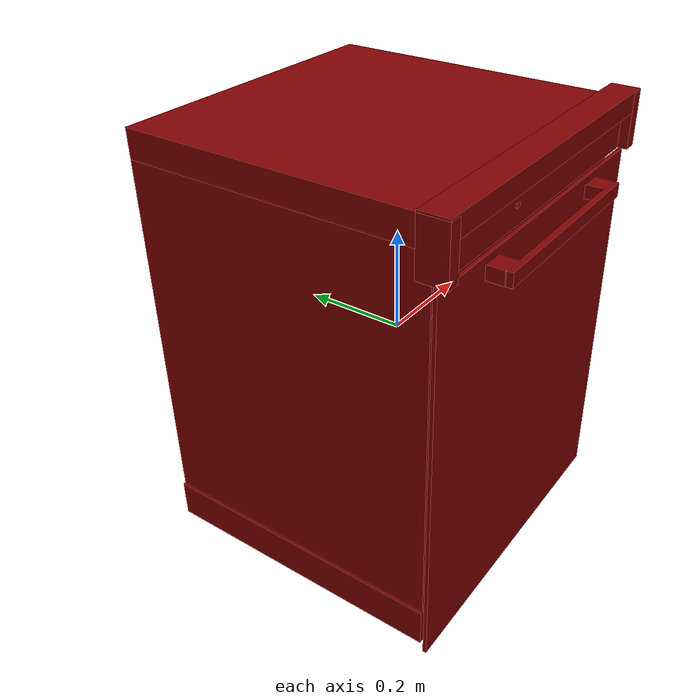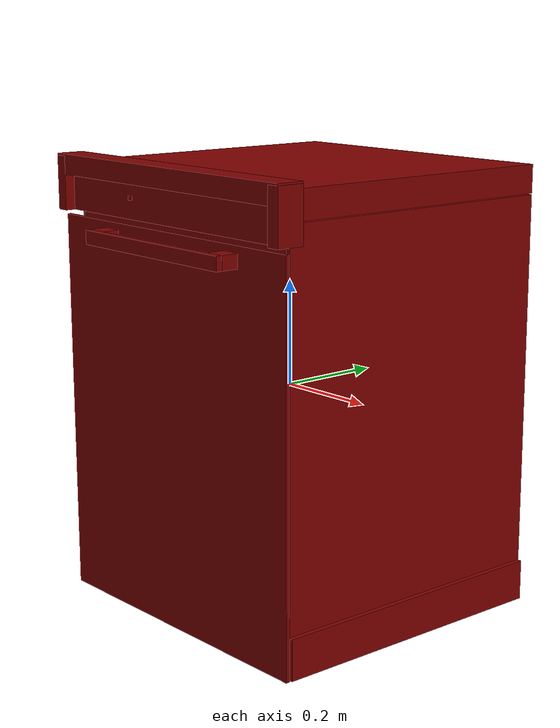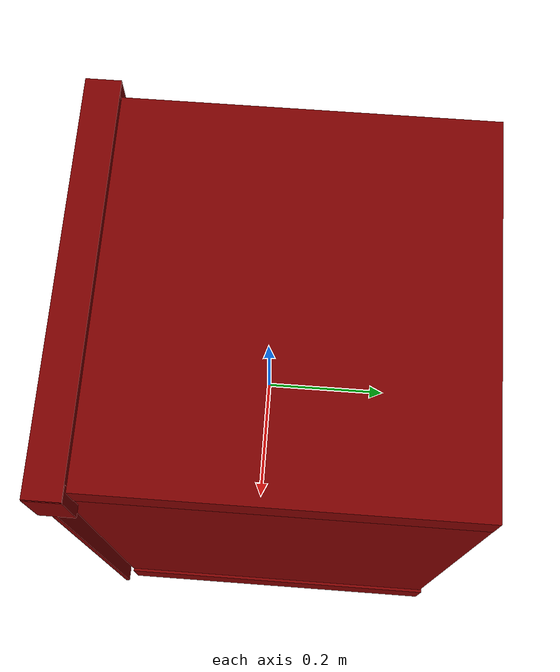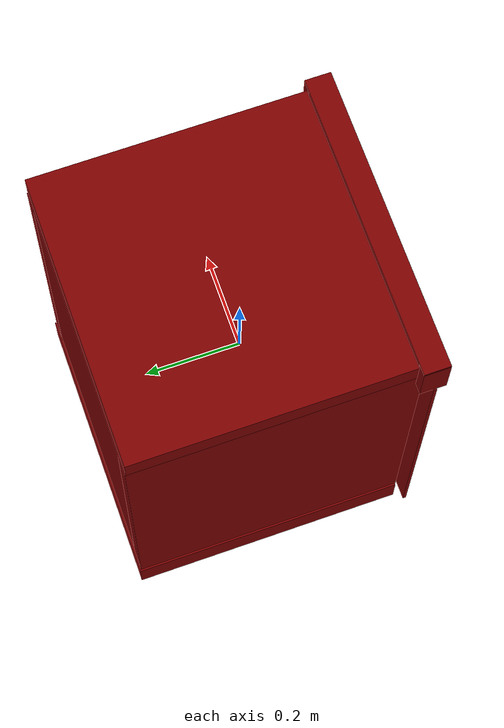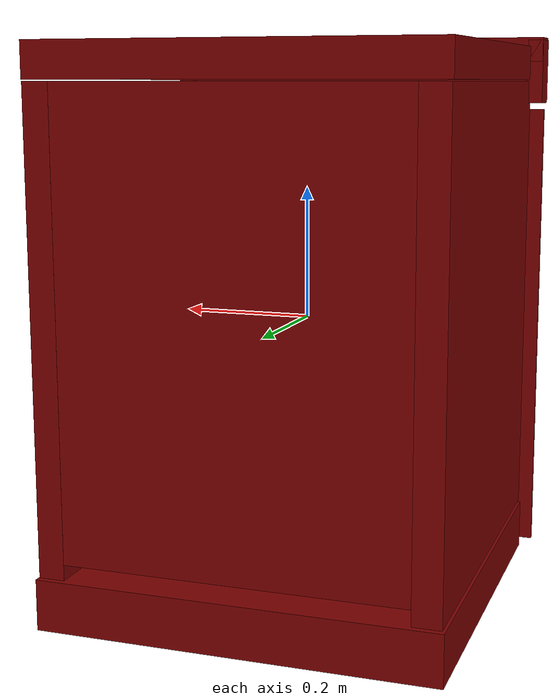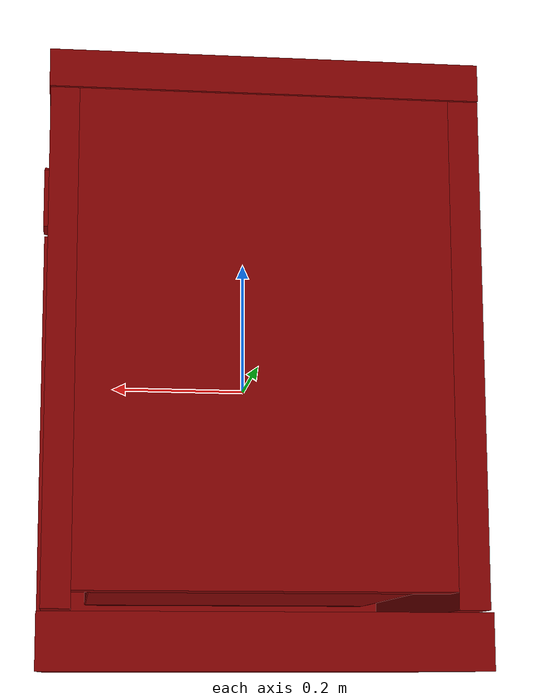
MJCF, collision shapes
<mujoco model="model">
  <compiler angle="radian"/>
  <asset>
    <mesh file="visuals/Body001.obj" name="Body001_vis"/>
    <mesh file="visuals/Button001.obj" name="Button001_vis"/>
    <mesh file="visuals/Container001.obj" name="Container001_vis"/>
    <mesh file="visuals/Container002.obj" name="Container002_vis"/>
    <mesh file="visuals/Door001.obj" name="Door001_vis"/>
    <texture file="visuals/T_BC001.png" name="Body001_material" type="2d"/>
    <material name="Body001_material" rgba="1 1 1 1.0" texture="Body001_material" shininess="0.5" specular="0.3103448502657381"/>
    <texture file="visuals/T_BC001.png" name="Button001_material" type="2d"/>
    <material name="Button001_material" rgba="1 1 1 1.0" texture="Button001_material" shininess="0.5" specular="0.3103448502657381"/>
    <texture file="visuals/T_BC001.png" name="Container001_material" type="2d"/>
    <material name="Container001_material" rgba="1 1 1 1.0" texture="Container001_material" shininess="3.5" specular="0.5"/>
    <texture file="visuals/T_BC001.png" name="Container002_material" type="2d"/>
    <material name="Container002_material" rgba="1 1 1 1.0" texture="Container002_material" shininess="3.5" specular="0.5"/>
    <texture file="visuals/T_BC001.png" name="Door001_material" type="2d"/>
    <material name="Door001_material" rgba="1 1 1 1.0" texture="Door001_material" shininess="2.5" specular="0.8"/>
  </asset>
  <default>
    <default class="visual">
      <geom conaffinity="0" contype="0" group="1" type="mesh"/>
    </default>
    <default class="collision">
      <geom group="0" rgba="0.5 0 0 0.5"/>
    </default>
    <default class="spawn">
      <geom group="0" rgba="1 1 1 0.5" contype="0" conaffinity="0"/>
      <site group="0" rgba="1 1 1 0.5"/>
    </default>
    <default class="region">
      <geom group="1" conaffinity="0" contype="0" rgba="0 1 0 0"/>
    </default>
  </default>
  <worldbody>
    <body>
      <body name="object">
        <geom mesh="Body001_vis" type="mesh" solimp="0.998 0.998 0.001" solref="0.001 1" density="100" friction="0.95 0.3 0.1" class="visual" material="Body001_material"/>
        <geom class="collision" type="box" pos="-0.274838 0.034994 0.007088" size="0.021320758387446404 0.2906593084335327 0.3533220589160919" quat="1.0 0.0 0.0 0.0"/>
        <geom class="collision" type="box" pos="0.278451 0.034994 0.007088" size="0.019756343215703964 0.29065802693367004 0.3533201217651367" quat="1.0 0.0 0.0 0.0"/>
        <geom class="collision" type="box" pos="0.003362 0.299073 0.018904" size="0.2898982763290405 0.026513153687119484 0.34150198101997375" quat="1.0 0.0 0.0 0.0"/>
        <geom class="collision" type="box" pos="0.001229 0.041261 0.389369" size="0.29874828457832336 0.2825988829135895 0.02651568129658699" quat="1.0 0.0 0.0 0.0"/>
        <geom class="collision" type="box" pos="0.001955 0.036900 -0.387555" size="0.3012716770172119 0.2916053533554077 0.038419533520936966" quat="1.0 0.0 0.0 0.0"/>
        <geom class="collision" type="box" pos="0.303973 -0.268572 0.375862" size="0.012740720994770527 0.026818690821528435 0.05019058287143707" quat="1.0 0.0 0.0 0.0"/>
        <geom class="collision" type="box" pos="-0.305616 -0.268572 0.375862" size="0.011827376671135426 0.026818599551916122 0.05019041895866394" quat="1.0 0.0 0.0 0.0"/>
        <geom class="collision" type="box" pos="-0.000568 -0.268572 0.410868" size="0.31625208258628845 0.02681851014494896 0.018824594095349312" quat="1.0 0.0 0.0 0.0"/>
        <geom class="collision" type="box" pos="-0.001082 -0.261771 0.365329" size="0.29003623127937317 0.016382712870836258 0.038905225694179535" quat="1.0 0.0 0.0 0.0"/>
        <geom class="collision" type="box" pos="-0.001513 -0.239644 0.299558" size="0.2904619574546814 0.01676759496331215 0.04697038233280182" quat="1.0 0.0 0.0 0.0"/>
        <body name="Button001">
          <joint axis="0.0 1.0 0.0" pos="-0.105179 -0.280309 0.365528" limited="true" name="Button001_joint" range="0.0 0.002" type="slide" damping="1" frictionloss="1" armature=".01" stiffness="0.05"/>
          <geom mesh="Button001_vis" type="mesh" solimp="0.998 0.998 0.001" solref="0.001 1" density="100" friction="0.95 0.3 0.1" class="visual" material="Button001_material"/>
          <geom class="collision" type="box" pos="-0.105244 -0.281999 0.365643" size="0.0039000867400318384 0.0016358608845621347 0.0039000867400318384" quat="1.0 0.0 0.0 0.0"/>
        </body>
        <body name="Container001">
          <joint axis="0.0 -0.9999999403953552 0.0" pos="0.000000 -0.000607 0.000209" limited="true" name="Container001_joint" range="0.0 0.1" type="slide" damping="1" frictionloss="1" armature=".01" stiffness="0.05"/>
          <geom mesh="Container001_vis" type="mesh" solimp="0.998 0.998 0.001" solref="0.001 1" density="100" friction="0.95 0.3 0.1" class="visual" material="Container001_material"/>
          <geom class="collision" type="box" pos="0.003834 0.014243 -0.045148" size="0.23074175417423248 0.24511799216270447 0.006796279456466436" quat="1.0 0.0 0.0 0.0"/>
          <geom class="collision" type="box" pos="0.003834 -0.245609 0.008937" size="0.23072205483913422 0.009935869835317135 0.060881830751895905" quat="1.0 0.0 0.0 0.0"/>
          <geom class="collision" type="box" pos="0.003834 0.255649 0.008937" size="0.23072277009487152 0.009935869835317135 0.060881830751895905" quat="1.0 0.0 0.0 0.0"/>
          <geom class="collision" type="box" pos="-0.218206 0.003227 0.008937" size="0.009935704991221428 0.23072904348373413 0.060881830751895905" quat="1.0 0.0 0.0 0.0"/>
          <geom class="collision" type="box" pos="0.226628 0.003227 0.008937" size="0.009935728274285793 0.23072904348373413 0.060881830751895905" quat="1.0 0.0 0.0 0.0"/>
        </body>
        <body name="Container002">
          <joint axis="0.0 -0.9999999403953552 0.0" pos="0.000000 -0.000607 0.000209" limited="true" name="Container002_joint" range="0.0 0.1" type="slide" damping="1" frictionloss="1" armature=".01" stiffness="0.05"/>
          <geom mesh="Container002_vis" type="mesh" solimp="0.998 0.998 0.001" solref="0.001 1" density="100" friction="0.95 0.3 0.1" class="visual" material="Container002_material"/>
          <geom class="collision" type="box" pos="0.003834 0.014243 -0.310197" size="0.23073317110538483 0.2451067417860031 0.006796038243919611" quat="1.0 0.0 0.0 0.0"/>
          <geom class="collision" type="box" pos="0.003834 -0.245609 -0.256111" size="0.23072564601898193 0.009935869835317135 0.060881830751895905" quat="1.0 0.0 0.0 0.0"/>
          <geom class="collision" type="box" pos="0.003834 0.255649 -0.256111" size="0.23072637617588043 0.009935869835317135 0.060881830751895905" quat="1.0 0.0 0.0 0.0"/>
          <geom class="collision" type="box" pos="-0.218206 0.003227 -0.256111" size="0.009935817681252956 0.23072904348373413 0.060881830751895905" quat="1.0 0.0 0.0 0.0"/>
          <geom class="collision" type="box" pos="0.226628 0.003227 -0.256111" size="0.009935840032994747 0.23072904348373413 0.060881830751895905" quat="1.0 0.0 0.0 0.0"/>
        </body>
        <body name="Door001">
          <joint axis="1.0 0.0 0.0" pos="0.000000 -0.266348 -0.403796" limited="true" name="Door001_joint" range="0.0 0.4363323129985824" type="hinge" damping="1" frictionloss="1" armature=".01" stiffness="1.2" springref="-0.5"/>
          <geom mesh="Door001_vis" type="mesh" solimp="0.998 0.998 0.001" solref="0.001 1" density="100" friction="0.95 0.3 0.1" class="visual" material="Door001_material"/>
          <geom class="collision" type="box" pos="-0.000807 -0.274448 -0.051004" size="0.3160005807876587 0.003508807858452201 0.3665464520454407" quat="1.0 0.0 0.0 0.0"/>
          <geom class="collision" type="box" pos="-0.168621 -0.295297 0.290381" size="0.019509293138980865 0.01602223701775074 0.013016545213758945" quat="1.0 0.0 0.0 0.0"/>
          <geom class="collision" type="box" pos="0.175436 -0.295297 0.290381" size="0.019509293138980865 0.01602225750684738 0.0130164735019207" quat="1.0 0.0 0.0 0.0"/>
          <geom class="collision" type="box" pos="0.004076 -0.317987 0.290381" size="0.19086246192455292 0.005852215923368931 0.013014757074415684" quat="1.0 0.0 0.0 0.0"/>
        </body>
        <geom class="region" name="reg_main" type="box" pos="0.0 0.02234649999999999 0.00020850000000000035" size="0.323145 0.3027515 0.4269135"/>
        <geom class="region" name="reg_int" type="box" pos="0.0003545000000000076 0.013901500000000011 -0.04885649999999998" size="0.26313050000000004 0.2588805 0.2903215"/>
      </body>
    </body>
  </worldbody>
  <actuator>
    <motor name="Button001_joint_actuator" joint="Button001_joint" gear="0.5"/>
    <motor name="Container001_joint_actuator" joint="Container001_joint" gear="10"/>
    <motor name="Container002_joint_actuator" joint="Container002_joint" gear="10"/>
    <motor name="Door001_joint_actuator" joint="Door001_joint" gear="50"/>
  </actuator>
</mujoco>
